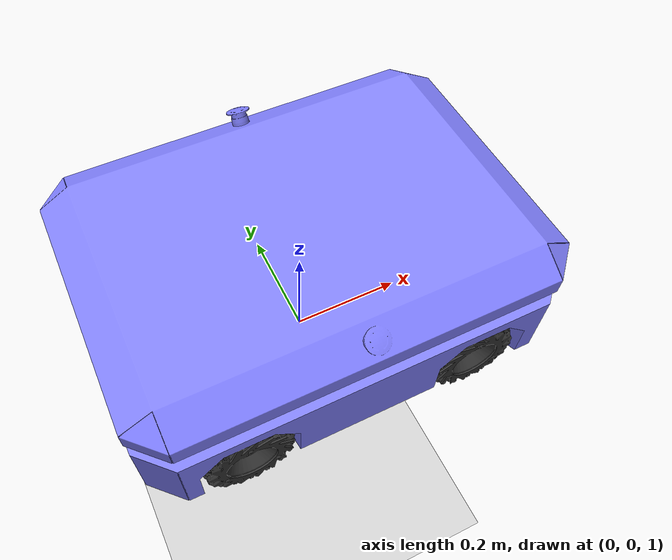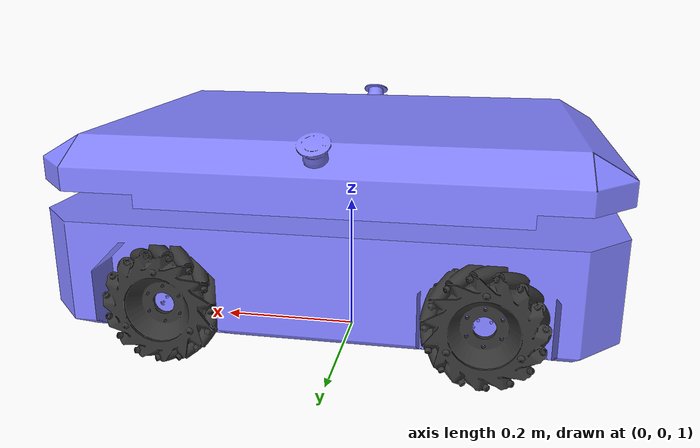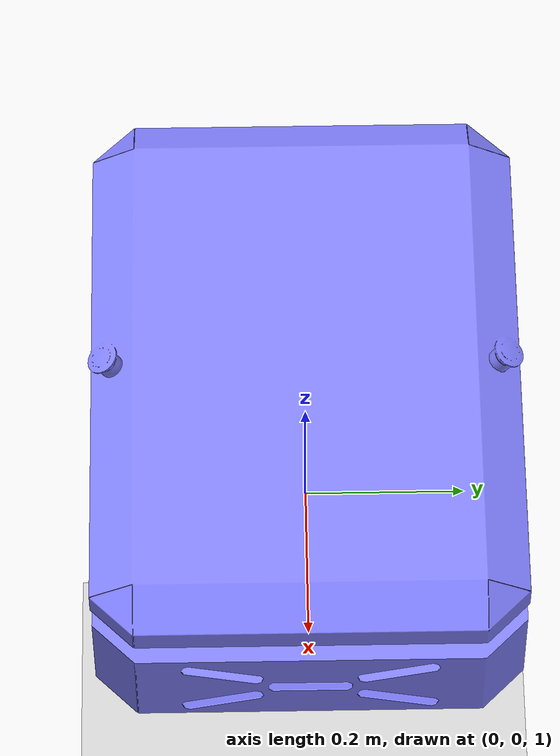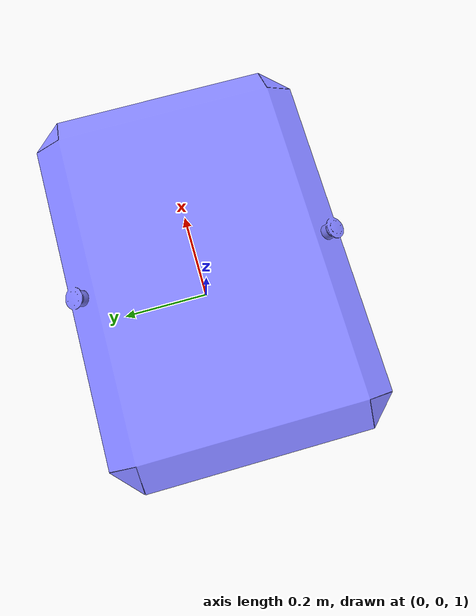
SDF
<?xml version="1.0" ?>
<sdf version="1.8">
  <world name="Moving_robot">
    <physics name="1ms" type="ignored">
      <max_step_size>0.001</max_step_size>
      <real_time_factor>1.0</real_time_factor>
    </physics>
    <plugin filename="libignition-gazebo-physics-system.so" name="ignition::gazebo::systems::Physics">
    </plugin>
    <plugin filename="libignition-gazebo-user-commands-system.so" name="ignition::gazebo::systems::UserCommands">
    </plugin>
    <plugin filename="libignition-gazebo-scene-broadcaster-system.so" name="ignition::gazebo::systems::SceneBroadcaster">
    </plugin>

    <light type="directional" name="sun">
      <cast_shadows>true</cast_shadows>
      <pose>0 0 10 0 0 0</pose>
      <diffuse>0.8 0.8 0.8 1</diffuse>
      <specular>0.2 0.2 0.2 1</specular>
      <attenuation>
        <range>1000</range>
        <constant>0.9</constant>
        <linear>0.01</linear>
        <quadratic>0.001</quadratic>
      </attenuation>
      <direction>-0.5 0.1 -0.9</direction>
    </light>

    <model name="ground_plane">
      <static>true</static>
      <link name="link">
        <collision name="collision">
          <geometry>
            <plane>
              <normal>0 0 1</normal>
            </plane>
          </geometry>
        </collision>
        <visual name="visual">
          <geometry>
            <plane>
              <normal>0 0 1</normal>
              <size>100 100</size>
            </plane>
          </geometry>
          <material>
            <ambient>0.8 0.8 0.8 1</ambient>
            <diffuse>0.8 0.8 0.8 1</diffuse>
            <specular>0.8 0.8 0.8 1</specular>
          </material>
        </visual>
      </link>
    </model>

    <model name='home_base'
      xmlns:ignition="http://ignitionrobotics.org/schema">
      <pose>0 0 1.0 0 -0 0</pose>
      <link name='home_base_base_footprint'>
        <inertial>
          <mass>1.14395</mass>
          <inertia>
            <ixx>0.126164</ixx>
            <ixy>0</ixy>
            <ixz>0</ixz>
            <iyy>0.416519</iyy>
            <iyz>0</iyz>
            <izz>0.481014</izz>
          </inertia>
        </inertial>
        <visual name='visual'>
          <pose>0 0 0.25 3.14 0 0</pose>
          <geometry>
            <mesh>
              <uri>file:///workspace/home-custom-base/home_custom_base_description/meshes/collision/body.stl</uri>
              <scale>0.001 0.001 0.001</scale>
            </mesh>
          </geometry>
          <material>
            <ambient>0.5 0.5 1.0 1</ambient>
            <diffuse>0.5 0.5 1.0 1</diffuse>
            <specular>0.0 0.0 1.0 1</specular>
          </material>
        </visual>
        <collision name='collision'>
          <pose>0 0 0.25 3.14 0 0</pose>
          <geometry>
            <box>
              <size>0.5 0.5 0.2</size>
            </box>
          </geometry>
        </collision>
      </link>

      <link name='front_left_wheel'>
        <pose relative_to='home_base_base_footprint'>0.2 0.23 0.12 -1.57 0 0</pose>
        <inertial>
          <mass>2</mass>
          <inertia>
            <ixx>0.145833</ixx>
            <ixy>0</ixy>
            <ixz>0</ixz>
            <iyy>0.145833</iyy>
            <iyz>0</iyz>
            <izz>0.125</izz>
          </inertia>
        </inertial>
        <visual name='visual'>
          <geometry>
            <mesh>
              <uri>file:///workspace/home-custom-base/home_custom_base_description/meshes/collision/mecanum_right.stl</uri>
              <scale>0.001 0.001 0.001</scale>
            </mesh>
          </geometry>
          <material>
            <ambient>0.2 0.2 0.2 1</ambient>
            <diffuse>0.2 0.2 0.2 1</diffuse>
            <specular>0.2 0.2 0.2 1</specular>
          </material>
        </visual>
        <collision name='collision'>
          <geometry>
            <cylinder>
              <radius>0.08</radius>
              <length>0.07</length>
            </cylinder>
          </geometry>
          <surface>
            <friction>
              <ode>
                <mu>1.0</mu>
                <mu2>0.0</mu2>
                <fdir1 ignition:expressed_in="home_base_base_footprint">1 -1 0</fdir1>
              </ode>
            </friction>
          </surface>
        </collision>
      </link>

      <link name='rear_left_wheel'>
        <pose relative_to='home_base_base_footprint'>-0.2 0.23 0.12 -1.57 0 0</pose>
        <inertial>
          <mass>2</mass>
          <inertia>
            <ixx>0.145833</ixx>
            <ixy>0</ixy>
            <ixz>0</ixz>
            <iyy>0.145833</iyy>
            <iyz>0</iyz>
            <izz>0.125</izz>
          </inertia>
        </inertial>
        <visual name='visual'>
          <geometry>
            <mesh>
              <uri>file:///workspace/home-custom-base/home_custom_base_description/meshes/collision/mecanum_left.stl</uri>
              <scale>0.001 0.001 0.001</scale>
            </mesh>
          </geometry>
          <material>
            <ambient>0.2 0.2 0.2 1</ambient>
            <diffuse>0.2 0.2 0.2 1</diffuse>
            <specular>0.2 0.2 0.2 1</specular>
          </material>
        </visual>
        <collision name='collision'>
          <geometry>
            <cylinder>
              <radius>0.08</radius>
              <length>0.07</length>
            </cylinder>
          </geometry>
          <surface>
            <friction>
              <ode>
                <mu>1.0</mu>
                <mu2>0.0</mu2>
                <fdir1 ignition:expressed_in="home_base_base_footprint">1 1 0</fdir1>
              </ode>
            </friction>
          </surface>
        </collision>
      </link>

      <link name='front_right_wheel'>
        <pose relative_to='home_base_base_footprint'>0.2 -0.23 0.12 -1.57 0 0</pose>
        <inertial>
          <mass>2</mass>
          <inertia>
            <ixx>0.145833</ixx>
            <ixy>0</ixy>
            <ixz>0</ixz>
            <iyy>0.145833</iyy>
            <iyz>0</iyz>
            <izz>0.125</izz>
          </inertia>
        </inertial>
        <visual name='visual'>
          <geometry>
            <mesh>
              <uri>file:///workspace/home-custom-base/home_custom_base_description/meshes/collision/mecanum_left.stl</uri>
              <scale>0.001 0.001 0.001</scale>
            </mesh>
          </geometry>
          <material>
            <ambient>0.2 0.2 0.2 1</ambient>
            <diffuse>0.2 0.2 0.2 1</diffuse>
            <specular>0.2 0.2 0.2 1</specular>
          </material>
        </visual>
        <collision name='collision'>
          <geometry>
            <cylinder>
              <radius>0.08</radius>
              <length>0.07</length>
            </cylinder>
          </geometry>
          <surface>
            <friction>
              <ode>
                <mu>1.0</mu>
                <mu2>0.0</mu2>
                <fdir1 ignition:expressed_in="home_base_base_footprint">1 1 0</fdir1>
              </ode>
            </friction>
          </surface>
        </collision>
      </link>

      <link name='rear_right_wheel'>
        <pose relative_to='home_base_base_footprint'>-0.2 -0.23 0.12 -1.57 0 0</pose>
        <inertial>
          <mass>2</mass>
          <inertia>
            <ixx>0.145833</ixx>
            <ixy>0</ixy>
            <ixz>0</ixz>
            <iyy>0.145833</iyy>
            <iyz>0</iyz>
            <izz>0.125</izz>
          </inertia>
        </inertial>
        <visual name='visual'>
          <geometry>
            <mesh>
              <uri>file:///workspace/home-custom-base/home_custom_base_description/meshes/collision/mecanum_right.stl</uri>
              <scale>0.001 0.001 0.001</scale>
            </mesh>
          </geometry>
          <material>
            <ambient>0.2 0.2 0.2 1</ambient>
            <diffuse>0.2 0.2 0.2 1</diffuse>
            <specular>0.2 0.2 0.2 1</specular>
          </material>
        </visual>
        <collision name='collision'>
          <geometry>
            <cylinder>
              <radius>0.08</radius>
              <length>0.07</length>
            </cylinder>
          </geometry>
          <surface>
            <friction>
              <ode>
                <mu>1.0</mu>
                <mu2>0.0</mu2>
                <fdir1 ignition:expressed_in="home_base_base_footprint">1 -1 0</fdir1>
              </ode>
            </friction>
          </surface>
        </collision>
      </link>

      <joint name='front_left_wheel_joint' type='revolute'>
        <parent>home_base_base_footprint</parent>
        <child>front_left_wheel</child>
        <axis>
          <xyz>0 0 1</xyz>
          <limit>
            <lower>-1.79769e+308</lower>
            <upper>1.79769e+308</upper>
          </limit>
        </axis>
      </joint>

      <joint name='front_right_wheel_joint' type='revolute'>
        <parent>home_base_base_footprint</parent>
        <child>front_right_wheel</child>
        <axis>
          <xyz>0 0 1</xyz>
          <limit>
            <lower>-1.79769e+308</lower>
            <upper>1.79769e+308</upper>
          </limit>
        </axis>
      </joint>

      <joint name='rear_left_wheel_joint' type='revolute'>
        <parent>home_base_base_footprint</parent>
        <child>rear_left_wheel</child>
        <axis>
          <xyz>0 0 1</xyz>
          <limit>
            <lower>-1.79769e+308</lower>
            <upper>1.79769e+308</upper>
          </limit>
        </axis>
      </joint>

      <joint name='rear_right_wheel_joint' type='revolute'>
        <parent>home_base_base_footprint</parent>
        <child>rear_right_wheel</child>
        <axis>
          <xyz>0 0 1</xyz>
          <limit>
            <lower>-1.79769e+308</lower>
            <upper>1.79769e+308</upper>
          </limit>
        </axis>
      </joint>

      <!--mecanum drive plugin-->
      <plugin filename="ignition-gazebo-mecanum-drive-system" name="ignition::gazebo::systems::MecanumDrive">
        <front_left_joint>front_left_wheel_joint</front_left_joint>
        <front_right_joint>front_right_wheel_joint</front_right_joint>
        <back_left_joint>rear_left_wheel_joint</back_left_joint>
        <back_right_joint>rear_right_wheel_joint</back_right_joint>
        <wheel_separation>1.25</wheel_separation>
        <wheelbase>1.511</wheelbase>
        <wheel_radius>0.07</wheel_radius>
        <min_acceleration>-5</min_acceleration>
        <max_acceleration>5</max_acceleration>
        <topic>cmd_vel</topic>
      </plugin>

      <plugin filename="ignition-gazebo-joint-state-publisher-system" name="ignition::gazebo::systems::JointStatePublisher">
        <ros>
          <namespace>/</namespace>
          <remapping>joint_states:=/joint_states</remapping>
        </ros>
      </plugin>

    </model>

    <!-- Moving Forward-->
    <plugin filename="libignition-gazebo-triggered-publisher-system.so" name="ignition::gazebo::systems::TriggeredPublisher">
      <input type="ignition.msgs.Int32" topic="/keyboard/keypress">
        <match field="data">16777235</match>
      </input>
      <output type="ignition.msgs.Twist" topic="/cmd_vel">
                linear: {x: 0.5}, angular: {z: 0.0}
      </output>
    </plugin>

    <!-- Moving Backward-->
    <plugin filename="libignition-gazebo-triggered-publisher-system.so" name="ignition::gazebo::systems::TriggeredPublisher">
      <input type="ignition.msgs.Int32" topic="/keyboard/keypress">
        <match field="data">16777237</match>
      </input>
      <output type="ignition.msgs.Twist" topic="/cmd_vel">
                linear: {x: -0.5}, angular: {z: 0.0}
      </output>
    </plugin>

    <!-- Rotating right-->
    <plugin filename="libignition-gazebo-triggered-publisher-system.so" name="ignition::gazebo::systems::TriggeredPublisher">
      <input type="ignition.msgs.Int32" topic="/keyboard/keypress">
        <match field="data">16777236</match>
      </input>
      <output type="ignition.msgs.Twist" topic="/cmd_vel">
                linear: {x: 0.0}, angular: {z: -0.5}
      </output>
    </plugin>

    <!--Rotating left-->
    <plugin filename="libignition-gazebo-triggered-publisher-system.so" name="ignition::gazebo::systems::TriggeredPublisher">
      <input type="ignition.msgs.Int32" topic="/keyboard/keypress">
        <match field="data">16777234</match>
      </input>
      <output type="ignition.msgs.Twist" topic="/cmd_vel">
                linear: {x: 0.0}, angular: {z: 0.5}
      </output>
    </plugin>
  </world>
</sdf>
